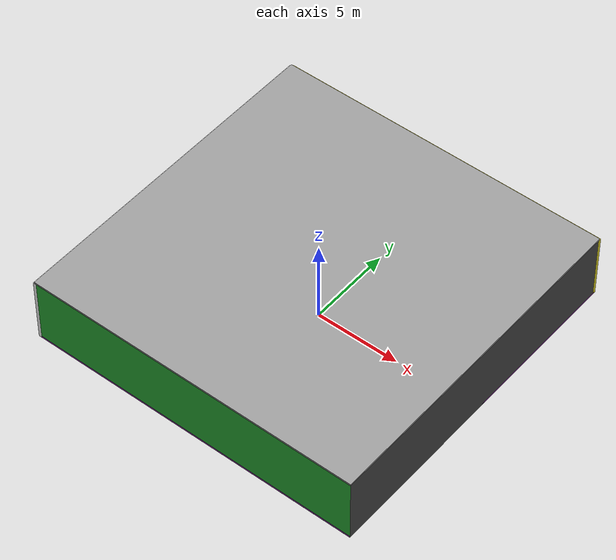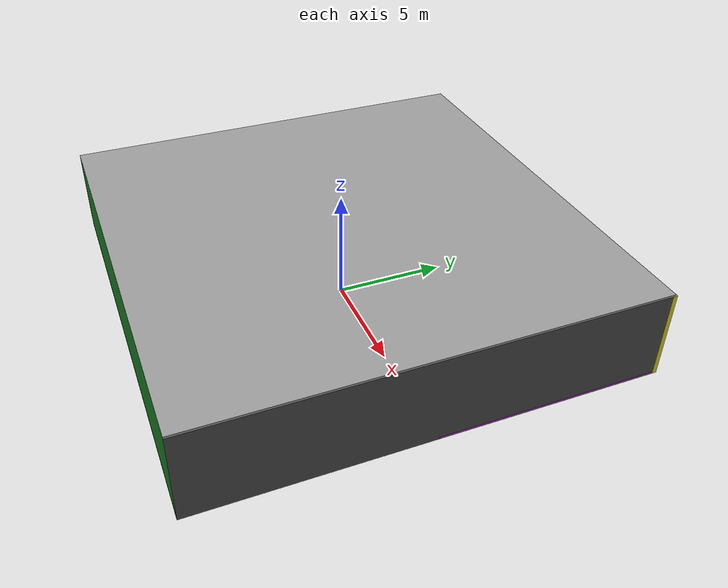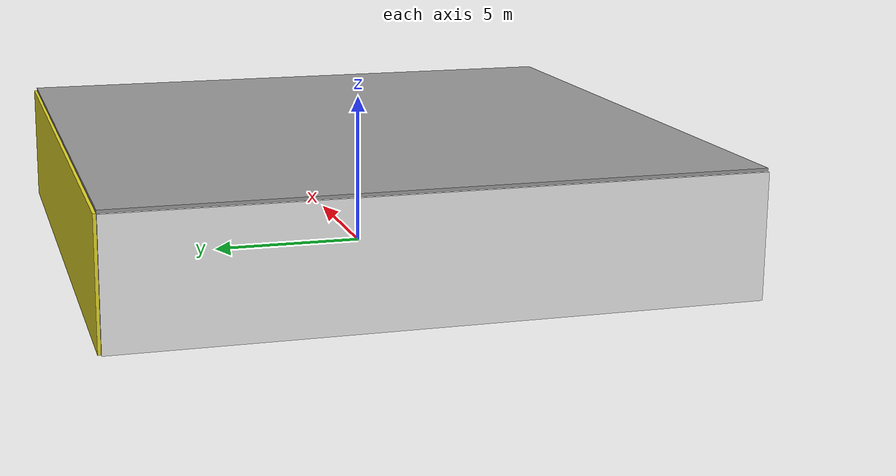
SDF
<sdf version="1.4">
 <world name="default">
  <physics type="ode">
   <max_step_size>0.001</max_step_size>
   <real_time_factor>1</real_time_factor>
   <real_time_update_rate>1000</real_time_update_rate>
   <gravity>0 0 -9.8</gravity>
  </physics>
  <scene><ambient>0.4 0.4 0.4 1</ambient><background>0.7 0.7 0.7 1</background><shadows>1</shadows></scene>
  <model name="Surrounding">
   <static>1</static>
   <link name="Ceiling">
    <collision name="Ceiling_Collision"><geometry><box><size>20 20 0.1</size></box></geometry></collision>
    <visual name="Ceiling_Visual">
     <geometry><box><size>20 20 0.1</size></box></geometry>
     <material>
      <script><uri>file://media/materials/scripts/gazebo.material</uri><name>Gazebo/Grey</name></script>
     </material>
    </visual>
    <pose>0 0 4.05 0 0 0</pose>
   </link>
   <link name="Wall_South">
    <collision name="Wall_South_Collision">
     <geometry><box><size>20 0 4</size></box></geometry>
     <pose>0 0 2 0 -0 0</pose>
    </collision>
    <visual name="Wall_South_Visual">
     <pose>0 0 2 0 -0 0</pose>
     <geometry><box><size>20 0 4</size></box></geometry>
     <material>
      <script><uri>file://media/materials/scripts/gazebo.material</uri><name>Gazebo/GreenGlow</name></script>
     </material>
    </visual>
    <velocity_decay><linear>0</linear><angular>0</angular></velocity_decay>
    <pose>0 -10 0 0 -0 0</pose>
   </link>
   <link name="Wall_East">
    <collision name="Wall_21_Collision">
     <geometry><box><size>20 0 4</size></box></geometry>
     <pose>0 0 2 0 -0 0</pose>
    </collision>
    <visual name="Wall_21_Visual">
     <pose>0 0 2 0 -0 0</pose>
     <geometry><box><size>20 0 4</size></box></geometry>
     <material>
      <script><uri>file://media/materials/scripts/gazebo.material</uri><name>Gazebo/Road</name></script>
     </material>
    </visual>
    <velocity_decay><linear>0</linear><angular>0</angular></velocity_decay>
    <pose>10 0 0 0 -0 1.5708</pose>
   </link>
   <link name="Wall_North">
    <collision name="Wall_22_Collision">
     <geometry><box><size>20 0.2 4</size></box></geometry>
     <pose>0 0 2 0 -0 0</pose>
    </collision>
    <visual name="Wall_22_Visual">
     <pose>0 0 2 0 -0 0</pose>
     <geometry><box><size>20 0.2 4</size></box></geometry>
     <material>
      <script><uri>file://media/materials/scripts/gazebo.material</uri><name>Gazebo/YellowGlow</name></script>
     </material>
    </visual>
    <velocity_decay><linear>0</linear><angular>0</angular></velocity_decay>
    <pose>0 10 0 0 -0 0</pose>
   </link>
   <link name="Wall_West">
    <collision name="Wall_23_Collision">
     <geometry><box><size>20 0.2 4</size></box></geometry>
     <pose>0 0 2 0 -0 0</pose>
    </collision>
    <visual name="Wall_23_Visual">
     <pose>0 0 2 0 -0 0</pose>
     <geometry><box><size>20 0.2 4</size></box></geometry>
     <material>
      <script><uri>file://media/materials/scripts/gazebo.material</uri><name>Gazebo/WhiteGlow</name></script>
     </material>
    </visual>
    <velocity_decay><linear>0</linear><angular>0</angular></velocity_decay>
    <pose>-10 0 0 0 0 -1.5708</pose>
   </link>
   <link name="Ground_link">
    <collision name="collision">
     <pose>0 0 .05 0 -0 0</pose>
     <geometry><box><size>20 20 0.1</size></box></geometry>
    </collision>
    <visual name="visual">
     <pose>0 0 .05 0 -0 0</pose>
     <geometry><box><size>20 20 0.1</size></box></geometry>
     <material>
      <script><uri>file://media/materials/scripts/gazebo.material</uri><name>Gazebo/PurpleGlow</name></script>
     </material>
    </visual>
   </link>
   <static>1</static>
  </model>
  <spherical_coordinates>
   <surface_model>EARTH_WGS84</surface_model>
   <latitude_deg>0</latitude_deg>
   <longitude_deg>0</longitude_deg>
   <elevation>0</elevation>
   <heading_deg>0</heading_deg>
  </spherical_coordinates>
  <light name="lightball_0" type="diffuse">
   <diffuse>0.8 0.8 0.8 1</diffuse>
   <specular>0.2 0.2 0.2 1</specular>
   <attenuation>
    <range>100</range>
    <constant>0.7</constant>
    <linear>0.01</linear>
    <quadratic>0.001</quadratic>
   </attenuation>
   <direction>-0.5 0.1 -0.9</direction>
   <pose>4.92752520843 5.77869297901 2.26948960389 0 0 0</pose>
  </light>
  <light name="lightball_1" type="diffuse">
   <diffuse>0.8 0.8 0.8 1</diffuse>
   <specular>0.2 0.2 0.2 1</specular>
   <attenuation>
    <range>100</range>
    <constant>0.7</constant>
    <linear>0.01</linear>
    <quadratic>0.001</quadratic>
   </attenuation>
   <direction>-0.5 0.1 -0.9</direction>
   <pose>-0.433239918113 6.72672378986 2.59265999626 0 0 0</pose>
  </light>
  <include>
   <uri>model://textured_shapes</uri>
   <pose>-1.83270992479 1.37925355841 0 0 0 1.07535988478</pose>
  </include>
  <include>
   <uri>model://textured_shapes</uri>
   <pose>-1.3170217885 3.34003724631 0 0 0 2.66503673963</pose>
  </include>
  <include><uri>model://table</uri><pose>-2.04802798001 8.35007244538 0 0 0 0.00859413923521</pose></include>
  <include>
   <uri>model://robocup_3Dsim_goal</uri>
   <pose>3.41146852344 -0.599344212798 0 0 0 2.62471549997</pose>
  </include>
  <include>
   <uri>model://construction_cone</uri>
   <pose>8.18330502498 5.03597217118 0 0 0 2.07594122836</pose>
  </include>
 </world>
</sdf>

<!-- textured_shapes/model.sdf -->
<sdf version="1.6">
  <model name="textured_shapes">
    <pose>0 0 0.5 0 0 0</pose>
    <link name="box">
      <pose>0 -1.5 0 0 0 0</pose>
      <collision name="collision">
        <geometry>
          <box>
            <size>1 1 1</size>
          </box>
        </geometry>
      </collision>
      <visual name="visual">
        <geometry>
          <box>
            <size>1 1 1</size>
          </box>
        </geometry>
        <material>
          <script>
            <uri>model://../model_source/models/textured_shapes/materials/scripts</uri>
            <uri>model://../model_source/models/textured_shapes/materials/textures</uri>
            <name>TexturedShape/Squares</name>
          </script>
        </material>
      </visual>
    </link>
    <link name="sphere">
      <collision name="collision">
        <geometry>
          <sphere>
            <radius>0.5</radius>
          </sphere>
        </geometry>
      </collision>
      <visual name="visual">
        <geometry>
          <sphere>
            <radius>0.5</radius>
          </sphere>
        </geometry>
        <material>
          <script>
            <uri>model://../model_source/models/textured_shapes/materials/scripts</uri>
            <uri>model://../model_source/models/textured_shapes/materials/textures</uri>
            <name>TexturedShape/Squares</name>
          </script>
        </material>
      </visual>
    </link>
    <link name="cylinder">
      <pose>0 1.5 0 0 0 0</pose>
      <collision name="collision">
        <geometry>
          <cylinder>
            <radius>0.5</radius>
            <length>1</length>
          </cylinder>
        </geometry>
      </collision>
      <visual name="visual">
        <geometry>
          <cylinder>
            <radius>0.5</radius>
            <length>1</length>
          </cylinder>
        </geometry>
        <material>
          <script>
            <uri>model://../model_source/models/textured_shapes/materials/scripts</uri>
            <uri>model://../model_source/models/textured_shapes/materials/textures</uri>
            <name>TexturedShape/Squares</name>
          </script>
        </material>
      </visual>
    </link>
  </model>
</sdf>

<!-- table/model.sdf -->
<sdf version="1.5">
  <model name="table">
    <static>true</static>
    <link name="link">
      <collision name="surface">
        <pose>0 0 1.0 0 0 0</pose>
        <geometry>
          <box>
            <size>1.5 0.8 0.03</size>
          </box>
        </geometry>
        <surface>
          <friction>
            <ode>
              <mu>0.6</mu>
              <mu2>0.6</mu2>
            </ode>
          </friction>
        </surface>
      </collision>
      <visual name="visual1">
        <pose>0 0 1.0 0 0 0</pose>
        <geometry>
          <box>
            <size>1.5 0.8 0.03</size>
          </box>
        </geometry>
        <material>
          <script>
            <uri>model://media/materials/scripts/gazebo.material</uri>
            <name>Gazebo/Wood</name>
          </script>
        </material>
      </visual>
      <collision name="front_left_leg">
        <pose>0.68 0.38 0.5 0 0 0</pose>
        <geometry>
          <cylinder>
            <radius>0.02</radius>
            <length>1.0</length>
          </cylinder>
        </geometry>
      </collision>
      <visual name="front_left_leg">
        <pose>0.68 0.38 0.5 0 0 0</pose>
        <geometry>
          <cylinder>
            <radius>0.02</radius>
            <length>1.0</length>
          </cylinder>
        </geometry>
        <material>
          <script>
            <uri>model://media/materials/scripts/gazebo.material</uri>
            <name>Gazebo/Grey</name>
          </script>
        </material>
      </visual>
      <collision name="front_right_leg">
        <pose>0.68 -0.38 0.5 0 0 0</pose>
        <geometry>
          <cylinder>
            <radius>0.02</radius>
            <length>1.0</length>
          </cylinder>
        </geometry>
      </collision>
      <visual name="front_right_leg">
        <pose>0.68 -0.38 0.5 0 0 0</pose>
        <geometry>
          <cylinder>
            <radius>0.02</radius>
            <length>1.0</length>
          </cylinder>
        </geometry>
        <material>
          <script>
            <uri>model://media/materials/scripts/gazebo.material</uri>
            <name>Gazebo/Grey</name>
          </script>
        </material>
      </visual>
      <collision name="back_right_leg">
        <pose>-0.68 -0.38 0.5 0 0 0</pose>
        <geometry>
          <cylinder>
            <radius>0.02</radius>
            <length>1.0</length>
          </cylinder>
        </geometry>
      </collision>
      <visual name="back_right_leg">
        <pose>-0.68 -0.38 0.5 0 0 0</pose>
        <geometry>
          <cylinder>
            <radius>0.02</radius>
            <length>1.0</length>
          </cylinder>
        </geometry>
        <material>
          <script>
            <uri>model://media/materials/scripts/gazebo.material</uri>
            <name>Gazebo/Grey</name>
          </script>
        </material>
      </visual>
      <collision name="back_left_leg">
        <pose>-0.68 0.38 0.5 0 0 0</pose>
        <geometry>
          <cylinder>
            <radius>0.02</radius>
            <length>1.0</length>
          </cylinder>
        </geometry>
      </collision>
      <visual name="back_left_leg">
        <pose>-0.68 0.38 0.5 0 0 0</pose>
        <geometry>
          <cylinder>
            <radius>0.02</radius>
            <length>1.0</length>
          </cylinder>
        </geometry>
        <material>
          <script>
            <uri>model://media/materials/scripts/gazebo.material</uri>
            <name>Gazebo/Grey</name>
          </script>
        </material>
      </visual>
    </link>
  </model>
</sdf>

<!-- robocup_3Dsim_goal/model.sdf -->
<sdf version="1.5">
  <model name="robocup_3d_goal">
    <static>true</static>
    <link name="left_post">
      <pose>0 1.05 0.45 0 0 0</pose>
      <collision name="collision">
        <geometry>
          <cylinder>
            <radius>0.05</radius>
            <length>0.9</length>
          </cylinder>
        </geometry>
      </collision>
      <visual name="visual">
        <geometry>
          <cylinder>
            <radius>0.05</radius>
            <length>0.9</length>
          </cylinder>
        </geometry>
        <material>
          <script>
            <uri>file://media/materials/scripts/gazebo.material</uri>
            <name>Gazebo/ZincYellow</name>
          </script>
        </material>
      </visual>
    </link>
    <link name="left_support_horiz_lower">
      <pose>0.30 1.05 0.01 0 0 0</pose>
      <collision name="collision">
        <geometry>
          <box>
            <size>0.50 0.02 0.02</size>
          </box>
        </geometry>
      </collision>
      <visual name="visual">
        <geometry>
          <box>
            <size>0.50 0.02 0.02</size>
          </box>
        </geometry>
        <material>
          <script>
            <uri>file://media/materials/scripts/gazebo.material</uri>
            <name>Gazebo/White</name>
          </script>
        </material>
      </visual>
    </link>
    <link name="left_support_horiz_upper">
      <pose>0.30 1.05 0.79 0 0 0</pose>
      <collision name="collision">
        <geometry>
          <box>
            <size>0.50 0.02 0.02</size>
          </box>
        </geometry>
      </collision>
      <visual name="visual">
        <geometry>
          <box>
            <size>0.50 0.02 0.02</size>
          </box>
        </geometry>
        <material>
          <script>
            <uri>file://media/materials/scripts/gazebo.material</uri>
            <name>Gazebo/White</name>
          </script>
        </material>
      </visual>
    </link>
    <link name="left_support_vertical">
      <pose>0.56 1.05 0.4 0 1.5708 0</pose>
      <collision name="collision">
        <geometry>
          <box>
            <size>0.80 0.02 0.02</size>
          </box>
        </geometry>
      </collision>
      <visual name="visual">
        <geometry>
          <box>
            <size>0.80 0.02 0.02</size>
          </box>
        </geometry>
        <material>
          <script>
            <uri>file://media/materials/scripts/gazebo.material</uri>
            <name>Gazebo/White</name>
          </script>
        </material>
      </visual>
    </link>
    <link name="right_support_horiz_lower">
      <pose>0.30 -1.05 0.01 0 0 0</pose>
      <collision name="collision">
        <geometry>
          <box>
            <size>0.50 0.02 0.02</size>
          </box>
        </geometry>
      </collision>
      <visual name="visual">
        <geometry>
          <box>
            <size>0.50 0.02 0.02</size>
          </box>
        </geometry>
        <material>
          <script>
            <uri>file://media/materials/scripts/gazebo.material</uri>
            <name>Gazebo/White</name>
          </script>
        </material>
      </visual>
    </link>
    <link name="right_support_horiz_upper">
      <pose>0.30 -1.05 0.79 0 0 0</pose>
      <collision name="collision">
        <geometry>
          <box>
            <size>0.50 0.02 0.02</size>
          </box>
        </geometry>
      </collision>
      <visual name="visual">
        <geometry>
          <box>
            <size>0.50 0.02 0.02</size>
          </box>
        </geometry>
        <material>
          <script>
            <uri>file://media/materials/scripts/gazebo.material</uri>
            <name>Gazebo/White</name>
          </script>
        </material>
      </visual>
    </link>
    <link name="right_support_vertical">
      <pose>0.56 -1.05 0.4 0 1.5708 0</pose>
      <collision name="collision">
        <geometry>
          <box>
            <size>0.80 0.02 0.02</size>
          </box>
        </geometry>
      </collision>
      <visual name="visual">
        <geometry>
          <box>
            <size>0.80 0.02 0.02</size>
          </box>
        </geometry>
        <material>
          <script>
            <uri>file://media/materials/scripts/gazebo.material</uri>
            <name>Gazebo/White</name>
          </script>
        </material>
      </visual>
    </link>
    <link name="center_support_horiz_lower">
      <pose>0.56 0 0.01 0 1.5708 0</pose>
      <collision name="collision">
        <geometry>
          <box>
            <size>0.02 2.08 0.02</size>
          </box>
        </geometry>
      </collision>
      <visual name="visual">
        <geometry>
          <box>
            <size>0.02 2.08 0.02</size>
          </box>
        </geometry>
        <material>
          <script>
            <uri>file://media/materials/scripts/gazebo.material</uri>
            <name>Gazebo/White</name>
          </script>
        </material>
      </visual>
    </link>
    <link name="center_support_horiz_upper">
      <pose>0.56 0 0.79 0 1.5708 0</pose>
      <collision name="collision">
        <geometry>
          <box>
            <size>0.02 2.08 0.02</size>
          </box>
        </geometry>
      </collision>
      <visual name="visual">
        <geometry>
          <box>
            <size>0.02 2.08 0.02</size>
          </box>
        </geometry>
        <material>
          <script>
            <uri>file://media/materials/scripts/gazebo.material</uri>
            <name>Gazebo/White</name>
          </script>
        </material>
      </visual>
    </link>
    <link name="right_post">
      <pose>0 -1.05 0.45 0 0 0</pose>
      <collision name="collision">
        <geometry>
          <cylinder>
            <radius>0.05</radius>
            <length>0.9</length>
          </cylinder>
        </geometry>
      </collision>
      <visual name="visual">
        <geometry>
          <cylinder>
            <radius>0.05</radius>
            <length>0.9</length>
          </cylinder>
        </geometry>
        <material>
          <script>
            <uri>file://media/materials/scripts/gazebo.material</uri>
            <name>Gazebo/ZincYellow</name>
          </script>
        </material>
      </visual>
    </link>
    <link name="crossbar">
      <pose>0 0 0.85 1.57 1.57 0</pose>
      <collision name="collision">
        <geometry>
          <cylinder>
            <radius>0.05</radius>
            <length>2.0</length>
          </cylinder>
        </geometry>
      </collision>
      <visual name="visual">
        <geometry>
          <cylinder>
            <radius>0.05</radius>
            <length>2.0</length>
          </cylinder>
        </geometry>
        <material>
          <script>
            <uri>file://media/materials/scripts/gazebo.material</uri>
            <name>Gazebo/ZincYellow</name>
          </script>
        </material>
      </visual>
    </link>
    <link name="center_net">
      <pose>0.56 0 0.40 0 0 0</pose>
      <collision name="collision">
        <geometry>
          <box>
            <size>0.01 2.1 0.80</size>
          </box>
        </geometry>
      </collision>
      <visual name="visual">
        <geometry>
          <box>
            <size>0.01 2.1 0.80</size>
          </box>
        </geometry>
        <material>
          <script>
            <uri>model://../model_source/models/robocup09_spl_field/materials/scripts/</uri>
            <uri>model://../model_source/models/robocup09_spl_field/materials/textures/</uri>
            <name>RoboCup/Net</name>
          </script>
        </material>
      </visual>
    </link>
    <link name="left_net">
      <pose>0.30 1.05 0.40 0 0 0</pose>
      <collision name="collision">
        <geometry>
          <box>
            <size>0.50 0.01 0.76</size>
          </box>
        </geometry>
      </collision>
      <visual name="visual">
        <geometry>
          <box>
            <size>0.50 0.01 0.76</size>
          </box>
        </geometry>
        <material>
          <script>
            <uri>model://../model_source/models/robocup09_spl_field/materials/scripts/</uri>
            <uri>model://../model_source/models/robocup09_spl_field/materials/textures/</uri>
            <name>RoboCup/Net</name>
          </script>
        </material>
      </visual>
    </link>
    <link name="right_net">
      <pose>0.30 -1.05 0.40 0 0 0</pose>
      <collision name="collision">
        <geometry>
          <box>
            <size>0.50 0.01 0.76</size>
          </box>
        </geometry>
      </collision>
      <visual name="visual">
        <geometry>
          <box>
            <size>0.50 0.01 0.76</size>
          </box>
        </geometry>
        <material>
          <script>
            <uri>model://../model_source/models/robocup09_spl_field/materials/scripts/</uri>
            <uri>model://../model_source/models/robocup09_spl_field/materials/textures/</uri>
            <name>RoboCup/Net</name>
          </script>
        </material>
      </visual>
    </link>
  </model>
</sdf>

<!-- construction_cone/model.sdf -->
<sdf version="1.5">
  <model name="Construction Cone">
    <link name="link">
      <collision name="collision">
        <geometry>
          <mesh>
            <scale>10 10 10</scale>
            <uri>file://isr-testbed/construction_cone/meshes/construction_cone.dae</uri>
          </mesh>
        </geometry>
      </collision>
      <visual name="visual">
        <geometry>
          <mesh>
            <scale>10 10 10</scale>
            <uri>file://isr-testbed/construction_cone/meshes/construction_cone.dae</uri>
          </mesh>
        </geometry>
      </visual>
    </link>
  </model>
</sdf>
